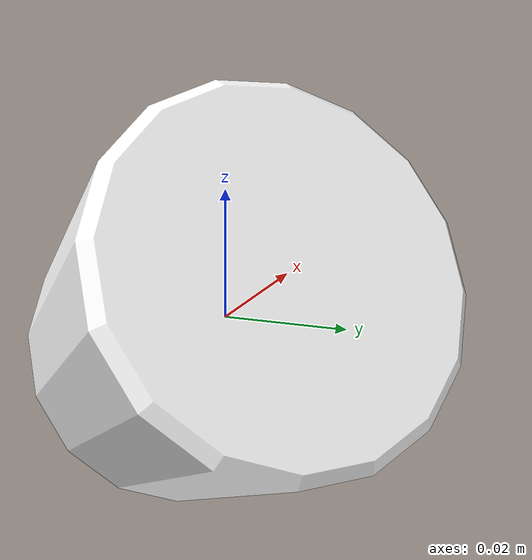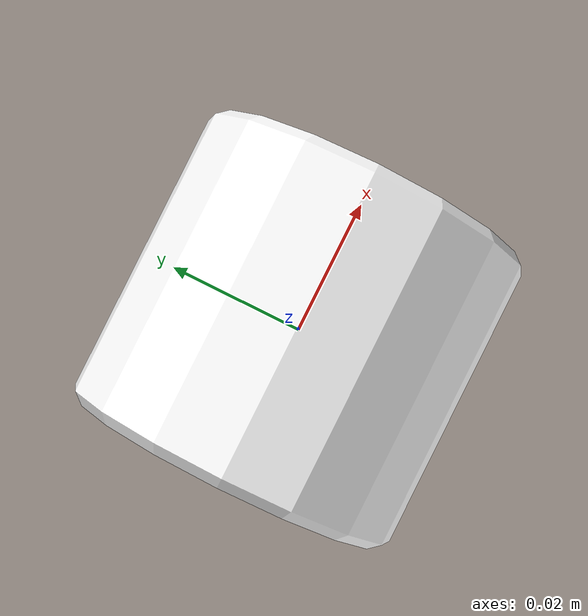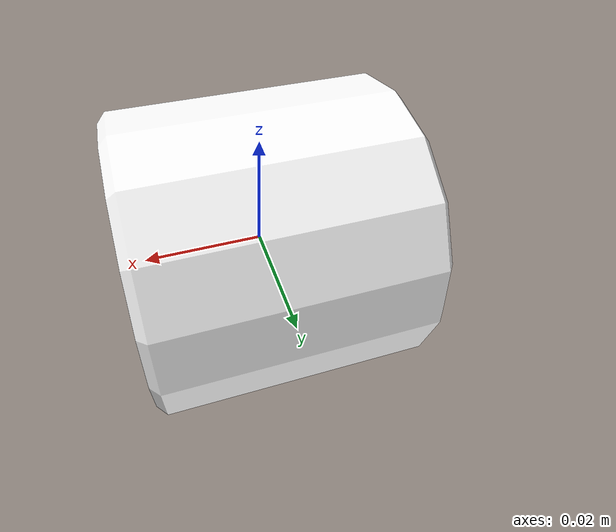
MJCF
<mujoco>
  <compiler angle="radian" assetdir="assets" autolimits="true"/>

  <asset>

    <!-- Textures -->
    <texture type="2d" colorspace="sRGB" name="Lun" file="Lun.png"/>

    <!-- Materials -->
    <material name="BK_Lun" rgba="1 1 1 1" reflectance="0.5" metallic="0.0" roughness="0.7451523542404175">
      <layer texture="Lun" role="rgb"/>
    </material>

    <!-- Visual meshes -->
    <mesh class="visual" name="V_table_Lun" file="V_table_Lun.obj"/>

    <!-- Collision meshes -->
  </asset>

  <default>
      <default class="visual">
        <geom type="mesh" contype="0" conaffinity="0" group="2" density="0"/>
      </default>
  </default>

  <worldbody>

    <body name="B_table_Lun" pos="0.0 0.0 0.0" quat="1.0 0.0 0.0 0.0">
      <geom class="visual" mesh="V_table_Lun" pos="0.0 0.0 0.0" quat="1.0 0.0 0.0 0.0" material="BK_Lun"/>
    </body>
  </worldbody>
</mujoco>
